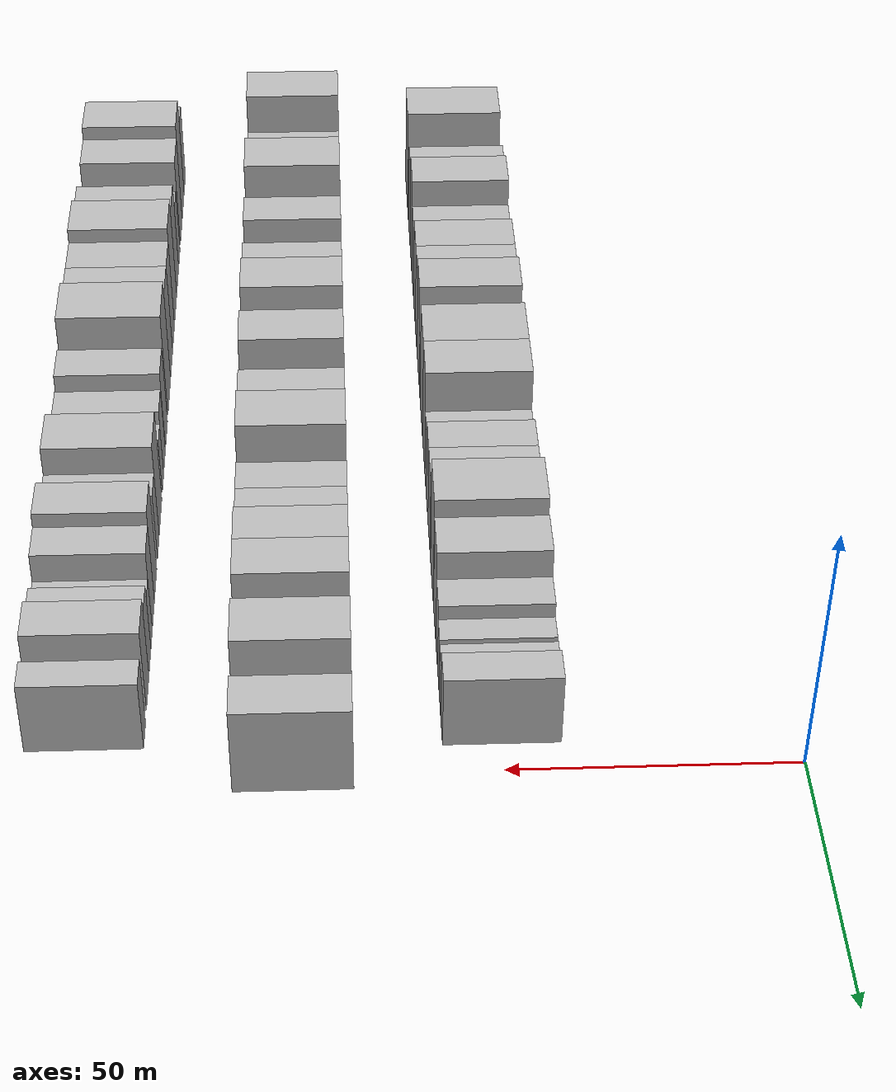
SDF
<sdf version="1.6">
 <world name="default">
  <model name="building_22">
   <static>1</static>
   <pose>50.0000 -176.1149 0 0.000000 0.000000 0.000000</pose>
   <link name="link">
    <pose>0 0 12.00 0 0 0</pose>
    <collision name="collision"><geometry><box><size>20.0000 11.1957 24.0000</size></box></geometry></collision>
    <visual name="visual">
     <cast_shadows>0</cast_shadows>
     <geometry><box><size>20.0000 11.1957 24.0000</size></box></geometry>
     <material>
      <script>
       <uri>model://HANNAS_wall/materials/scripts</uri>
       <uri>model://HANNAS_wall/materials/textures</uri>
       <name>vrc/HANNAS_wall</name>
      </script>
     </material>
    </visual>
   </link>
  </model>
  <model name="building_23">
   <static>1</static>
   <pose>50.0000 -167.2799 0 0.000000 0.000000 0.000000</pose>
   <link name="link">
    <pose>0 0 7.50 0 0 0</pose>
    <collision name="collision"><geometry><box><size>20.0000 6.4744 15.0000</size></box></geometry></collision>
    <visual name="visual">
     <cast_shadows>0</cast_shadows>
     <geometry><box><size>20.0000 6.4744 15.0000</size></box></geometry>
     <material>
      <script>
       <uri>model://HANNAS_wall/materials/scripts</uri>
       <uri>model://HANNAS_wall/materials/textures</uri>
       <name>vrc/HANNAS_wall</name>
      </script>
     </material>
    </visual>
   </link>
  </model>
  <model name="building_24">
   <static>1</static>
   <pose>50.0000 -157.5226 0 0.000000 0.000000 0.000000</pose>
   <link name="link">
    <pose>0 0 10.50 0 0 0</pose>
    <collision name="collision"><geometry><box><size>20.0000 9.0403 21.0000</size></box></geometry></collision>
    <visual name="visual">
     <cast_shadows>0</cast_shadows>
     <geometry><box><size>20.0000 9.0403 21.0000</size></box></geometry>
     <material>
      <script>
       <uri>model://HANNAS_wall/materials/scripts</uri>
       <uri>model://HANNAS_wall/materials/textures</uri>
       <name>vrc/HANNAS_wall</name>
      </script>
     </material>
    </visual>
   </link>
  </model>
  <model name="building_25">
   <static>1</static>
   <pose>50.0000 -148.1987 0 0.000000 0.000000 0.000000</pose>
   <link name="link">
    <pose>0 0 12.00 0 0 0</pose>
    <collision name="collision"><geometry><box><size>20.0000 9.6075 24.0000</size></box></geometry></collision>
    <visual name="visual">
     <cast_shadows>0</cast_shadows>
     <geometry><box><size>20.0000 9.6075 24.0000</size></box></geometry>
     <material>
      <script>
       <uri>model://HANNAS_wall/materials/scripts</uri>
       <uri>model://HANNAS_wall/materials/textures</uri>
       <name>vrc/HANNAS_wall</name>
      </script>
     </material>
    </visual>
   </link>
  </model>
  <model name="building_26">
   <static>1</static>
   <pose>50.0000 -139.4160 0 0.000000 0.000000 0.000000</pose>
   <link name="link">
    <pose>0 0 9.00 0 0 0</pose>
    <collision name="collision"><geometry><box><size>20.0000 7.9579 18.0000</size></box></geometry></collision>
    <visual name="visual">
     <cast_shadows>0</cast_shadows>
     <geometry><box><size>20.0000 7.9579 18.0000</size></box></geometry>
     <material>
      <script>
       <uri>model://HANNAS_wall/materials/scripts</uri>
       <uri>model://HANNAS_wall/materials/textures</uri>
       <name>vrc/HANNAS_wall</name>
      </script>
     </material>
    </visual>
   </link>
  </model>
  <model name="building_27">
   <static>1</static>
   <pose>50.0000 -128.8239 0 0.000000 0.000000 0.000000</pose>
   <link name="link">
    <pose>0 0 10.50 0 0 0</pose>
    <collision name="collision"><geometry><box><size>20.0000 9.2261 21.0000</size></box></geometry></collision>
    <visual name="visual">
     <cast_shadows>0</cast_shadows>
     <geometry><box><size>20.0000 9.2261 21.0000</size></box></geometry>
     <material>
      <script>
       <uri>model://HANNAS_wall/materials/scripts</uri>
       <uri>model://HANNAS_wall/materials/textures</uri>
       <name>vrc/HANNAS_wall</name>
      </script>
     </material>
    </visual>
   </link>
  </model>
  <model name="building_28">
   <static>1</static>
   <pose>50.0000 -119.6874 0 0.000000 0.000000 0.000000</pose>
   <link name="link">
    <pose>0 0 10.50 0 0 0</pose>
    <collision name="collision"><geometry><box><size>20.0000 9.0469 21.0000</size></box></geometry></collision>
    <visual name="visual">
     <cast_shadows>0</cast_shadows>
     <geometry><box><size>20.0000 9.0469 21.0000</size></box></geometry>
     <material>
      <script>
       <uri>model://HANNAS_wall/materials/scripts</uri>
       <uri>model://HANNAS_wall/materials/textures</uri>
       <name>vrc/HANNAS_wall</name>
      </script>
     </material>
    </visual>
   </link>
  </model>
  <model name="building_29">
   <static>1</static>
   <pose>50.0000 -110.2799 0 0.000000 0.000000 0.000000</pose>
   <link name="link">
    <pose>0 0 12.00 0 0 0</pose>
    <collision name="collision"><geometry><box><size>20.0000 9.7681 24.0000</size></box></geometry></collision>
    <visual name="visual">
     <cast_shadows>0</cast_shadows>
     <geometry><box><size>20.0000 9.7681 24.0000</size></box></geometry>
     <material>
      <script>
       <uri>model://HANNAS_wall/materials/scripts</uri>
       <uri>model://HANNAS_wall/materials/textures</uri>
       <name>vrc/HANNAS_wall</name>
      </script>
     </material>
    </visual>
   </link>
  </model>
  <model name="building_30">
   <static>1</static>
   <pose>50.0000 -102.4965 0 0.000000 0.000000 0.000000</pose>
   <link name="link">
    <pose>0 0 6.00 0 0 0</pose>
    <collision name="collision"><geometry><box><size>20.0000 5.7986 12.0000</size></box></geometry></collision>
    <visual name="visual">
     <cast_shadows>0</cast_shadows>
     <geometry><box><size>20.0000 5.7986 12.0000</size></box></geometry>
     <material>
      <script>
       <uri>model://HANNAS_wall/materials/scripts</uri>
       <uri>model://HANNAS_wall/materials/textures</uri>
       <name>vrc/HANNAS_wall</name>
      </script>
     </material>
    </visual>
   </link>
  </model>
  <model name="building_31">
   <static>1</static>
   <pose>50.0000 -93.7055 0 0.000000 0.000000 0.000000</pose>
   <link name="link">
    <pose>0 0 12.00 0 0 0</pose>
    <collision name="collision"><geometry><box><size>20.0000 11.7835 24.0000</size></box></geometry></collision>
    <visual name="visual">
     <cast_shadows>0</cast_shadows>
     <geometry><box><size>20.0000 11.7835 24.0000</size></box></geometry>
     <material>
      <script>
       <uri>model://HANNAS_wall/materials/scripts</uri>
       <uri>model://HANNAS_wall/materials/textures</uri>
       <name>vrc/HANNAS_wall</name>
      </script>
     </material>
    </visual>
   </link>
  </model>
  <model name="building_32">
   <static>1</static>
   <pose>50.0000 -82.7374 0 0.000000 0.000000 0.000000</pose>
   <link name="link">
    <pose>0 0 12.00 0 0 0</pose>
    <collision name="collision"><geometry><box><size>20.0000 10.1527 24.0000</size></box></geometry></collision>
    <visual name="visual">
     <cast_shadows>0</cast_shadows>
     <geometry><box><size>20.0000 10.1527 24.0000</size></box></geometry>
     <material>
      <script>
       <uri>model://HANNAS_wall/materials/scripts</uri>
       <uri>model://HANNAS_wall/materials/textures</uri>
       <name>vrc/HANNAS_wall</name>
      </script>
     </material>
    </visual>
   </link>
  </model>
  <model name="building_33">
   <static>1</static>
   <pose>50.0000 -74.2116 0 0.000000 0.000000 0.000000</pose>
   <link name="link">
    <pose>0 0 7.50 0 0 0</pose>
    <collision name="collision"><geometry><box><size>20.0000 6.8991 15.0000</size></box></geometry></collision>
    <visual name="visual">
     <cast_shadows>0</cast_shadows>
     <geometry><box><size>20.0000 6.8991 15.0000</size></box></geometry>
     <material>
      <script>
       <uri>model://HANNAS_wall/materials/scripts</uri>
       <uri>model://HANNAS_wall/materials/textures</uri>
       <name>vrc/HANNAS_wall</name>
      </script>
     </material>
    </visual>
   </link>
  </model>
  <model name="building_34">
   <static>1</static>
   <pose>50.0000 -66.9841 0 0.000000 0.000000 0.000000</pose>
   <link name="link">
    <pose>0 0 9.00 0 0 0</pose>
    <collision name="collision"><geometry><box><size>20.0000 7.5560 18.0000</size></box></geometry></collision>
    <visual name="visual">
     <cast_shadows>0</cast_shadows>
     <geometry><box><size>20.0000 7.5560 18.0000</size></box></geometry>
     <material>
      <script>
       <uri>model://HANNAS_wall/materials/scripts</uri>
       <uri>model://HANNAS_wall/materials/textures</uri>
       <name>vrc/HANNAS_wall</name>
      </script>
     </material>
    </visual>
   </link>
  </model>
  <model name="building_35">
   <static>1</static>
   <pose>50.0000 -58.8484 0 0.000000 0.000000 0.000000</pose>
   <link name="link">
    <pose>0 0 9.00 0 0 0</pose>
    <collision name="collision"><geometry><box><size>20.0000 8.7153 18.0000</size></box></geometry></collision>
    <visual name="visual">
     <cast_shadows>0</cast_shadows>
     <geometry><box><size>20.0000 8.7153 18.0000</size></box></geometry>
     <material>
      <script>
       <uri>model://HANNAS_wall/materials/scripts</uri>
       <uri>model://HANNAS_wall/materials/textures</uri>
       <name>vrc/HANNAS_wall</name>
      </script>
     </material>
    </visual>
   </link>
  </model>
  <model name="building_36">
   <static>1</static>
   <pose>50.0000 -46.8286 0 0.000000 0.000000 0.000000</pose>
   <link name="link">
    <pose>0 0 12.00 0 0 0</pose>
    <collision name="collision"><geometry><box><size>20.0000 11.3243 24.0000</size></box></geometry></collision>
    <visual name="visual">
     <cast_shadows>0</cast_shadows>
     <geometry><box><size>20.0000 11.3243 24.0000</size></box></geometry>
     <material>
      <script>
       <uri>model://HANNAS_wall/materials/scripts</uri>
       <uri>model://HANNAS_wall/materials/textures</uri>
       <name>vrc/HANNAS_wall</name>
      </script>
     </material>
    </visual>
   </link>
  </model>
  <model name="building_37">
   <static>1</static>
   <pose>50.0000 -35.5093 0 0.000000 0.000000 0.000000</pose>
   <link name="link">
    <pose>0 0 10.50 0 0 0</pose>
    <collision name="collision"><geometry><box><size>20.0000 9.3142 21.0000</size></box></geometry></collision>
    <visual name="visual">
     <cast_shadows>0</cast_shadows>
     <geometry><box><size>20.0000 9.3142 21.0000</size></box></geometry>
     <material>
      <script>
       <uri>model://HANNAS_wall/materials/scripts</uri>
       <uri>model://HANNAS_wall/materials/textures</uri>
       <name>vrc/HANNAS_wall</name>
      </script>
     </material>
    </visual>
   </link>
  </model>
  <model name="building_38">
   <static>1</static>
   <pose>50.0000 -27.4228 0 0.000000 0.000000 0.000000</pose>
   <link name="link">
    <pose>0 0 7.50 0 0 0</pose>
    <collision name="collision"><geometry><box><size>20.0000 6.8588 15.0000</size></box></geometry></collision>
    <visual name="visual">
     <cast_shadows>0</cast_shadows>
     <geometry><box><size>20.0000 6.8588 15.0000</size></box></geometry>
     <material>
      <script>
       <uri>model://HANNAS_wall/materials/scripts</uri>
       <uri>model://HANNAS_wall/materials/textures</uri>
       <name>vrc/HANNAS_wall</name>
      </script>
     </material>
    </visual>
   </link>
  </model>
  <model name="building_39">
   <static>1</static>
   <pose>50.0000 -21.4592 0 0.000000 0.000000 0.000000</pose>
   <link name="link">
    <pose>0 0 6.00 0 0 0</pose>
    <collision name="collision"><geometry><box><size>20.0000 5.0684 12.0000</size></box></geometry></collision>
    <visual name="visual">
     <cast_shadows>0</cast_shadows>
     <geometry><box><size>20.0000 5.0684 12.0000</size></box></geometry>
     <material>
      <script>
       <uri>model://HANNAS_wall/materials/scripts</uri>
       <uri>model://HANNAS_wall/materials/textures</uri>
       <name>vrc/HANNAS_wall</name>
      </script>
     </material>
    </visual>
   </link>
  </model>
  <model name="building_40">
   <static>1</static>
   <pose>50.0000 -15.3044 0 0.000000 0.000000 0.000000</pose>
   <link name="link">
    <pose>0 0 6.00 0 0 0</pose>
    <collision name="collision"><geometry><box><size>20.0000 5.2412 12.0000</size></box></geometry></collision>
    <visual name="visual">
     <cast_shadows>0</cast_shadows>
     <geometry><box><size>20.0000 5.2412 12.0000</size></box></geometry>
     <material>
      <script>
       <uri>model://HANNAS_wall/materials/scripts</uri>
       <uri>model://HANNAS_wall/materials/textures</uri>
       <name>vrc/HANNAS_wall</name>
      </script>
     </material>
    </visual>
   </link>
  </model>
  <model name="building_41">
   <static>1</static>
   <pose>50.0000 -9.3986 0 0.000000 0.000000 0.000000</pose>
   <link name="link">
    <pose>0 0 7.50 0 0 0</pose>
    <collision name="collision"><geometry><box><size>20.0000 6.5705 15.0000</size></box></geometry></collision>
    <visual name="visual">
     <cast_shadows>0</cast_shadows>
     <geometry><box><size>20.0000 6.5705 15.0000</size></box></geometry>
     <material>
      <script>
       <uri>model://HANNAS_wall/materials/scripts</uri>
       <uri>model://HANNAS_wall/materials/textures</uri>
       <name>vrc/HANNAS_wall</name>
      </script>
     </material>
    </visual>
   </link>
  </model>
  <model name="building_101">
   <static>1</static>
   <pose>85.0000 -184.4258 0 0.000000 0.000000 0.000000</pose>
   <link name="link">
    <pose>0 0 12.00 0 0 0</pose>
    <collision name="collision"><geometry><box><size>20.0000 10.7740 24.0000</size></box></geometry></collision>
    <visual name="visual">
     <cast_shadows>0</cast_shadows>
     <geometry><box><size>20.0000 10.7740 24.0000</size></box></geometry>
     <material>
      <script>
       <uri>model://HANNAS_wall/materials/scripts</uri>
       <uri>model://HANNAS_wall/materials/textures</uri>
       <name>vrc/HANNAS_wall</name>
      </script>
     </material>
    </visual>
   </link>
  </model>
  <model name="building_102">
   <static>1</static>
   <pose>85.0000 -175.5268 0 0.000000 0.000000 0.000000</pose>
   <link name="link">
    <pose>0 0 7.50 0 0 0</pose>
    <collision name="collision"><geometry><box><size>20.0000 7.0239 15.0000</size></box></geometry></collision>
    <visual name="visual">
     <cast_shadows>0</cast_shadows>
     <geometry><box><size>20.0000 7.0239 15.0000</size></box></geometry>
     <material>
      <script>
       <uri>model://HANNAS_wall/materials/scripts</uri>
       <uri>model://HANNAS_wall/materials/textures</uri>
       <name>vrc/HANNAS_wall</name>
      </script>
     </material>
    </visual>
   </link>
  </model>
  <model name="building_103">
   <static>1</static>
   <pose>85.0000 -165.9142 0 0.000000 0.000000 0.000000</pose>
   <link name="link">
    <pose>0 0 9.00 0 0 0</pose>
    <collision name="collision"><geometry><box><size>20.0000 8.2014 18.0000</size></box></geometry></collision>
    <visual name="visual">
     <cast_shadows>0</cast_shadows>
     <geometry><box><size>20.0000 8.2014 18.0000</size></box></geometry>
     <material>
      <script>
       <uri>model://HANNAS_wall/materials/scripts</uri>
       <uri>model://HANNAS_wall/materials/textures</uri>
       <name>vrc/HANNAS_wall</name>
      </script>
     </material>
    </visual>
   </link>
  </model>
  <model name="building_104">
   <static>1</static>
   <pose>85.0000 -156.1710 0 0.000000 0.000000 0.000000</pose>
   <link name="link">
    <pose>0 0 12.00 0 0 0</pose>
    <collision name="collision"><geometry><box><size>20.0000 11.2849 24.0000</size></box></geometry></collision>
    <visual name="visual">
     <cast_shadows>0</cast_shadows>
     <geometry><box><size>20.0000 11.2849 24.0000</size></box></geometry>
     <material>
      <script>
       <uri>model://HANNAS_wall/materials/scripts</uri>
       <uri>model://HANNAS_wall/materials/textures</uri>
       <name>vrc/HANNAS_wall</name>
      </script>
     </material>
    </visual>
   </link>
  </model>
  <model name="building_105">
   <static>1</static>
   <pose>85.0000 -146.4086 0 0.000000 0.000000 0.000000</pose>
   <link name="link">
    <pose>0 0 7.50 0 0 0</pose>
    <collision name="collision"><geometry><box><size>20.0000 6.2400 15.0000</size></box></geometry></collision>
    <visual name="visual">
     <cast_shadows>0</cast_shadows>
     <geometry><box><size>20.0000 6.2400 15.0000</size></box></geometry>
     <material>
      <script>
       <uri>model://HANNAS_wall/materials/scripts</uri>
       <uri>model://HANNAS_wall/materials/textures</uri>
       <name>vrc/HANNAS_wall</name>
      </script>
     </material>
    </visual>
   </link>
  </model>
  <model name="building_106">
   <static>1</static>
   <pose>85.0000 -139.0010 0 0.000000 0.000000 0.000000</pose>
   <link name="link">
    <pose>0 0 10.50 0 0 0</pose>
    <collision name="collision"><geometry><box><size>20.0000 8.5751 21.0000</size></box></geometry></collision>
    <visual name="visual">
     <cast_shadows>0</cast_shadows>
     <geometry><box><size>20.0000 8.5751 21.0000</size></box></geometry>
     <material>
      <script>
       <uri>model://HANNAS_wall/materials/scripts</uri>
       <uri>model://HANNAS_wall/materials/textures</uri>
       <name>vrc/HANNAS_wall</name>
      </script>
     </material>
    </visual>
   </link>
  </model>
  <model name="building_107">
   <static>1</static>
   <pose>85.0000 -132.0676 0 0.000000 0.000000 0.000000</pose>
   <link name="link">
    <pose>0 0 6.00 0 0 0</pose>
    <collision name="collision"><geometry><box><size>20.0000 5.2917 12.0000</size></box></geometry></collision>
    <visual name="visual">
     <cast_shadows>0</cast_shadows>
     <geometry><box><size>20.0000 5.2917 12.0000</size></box></geometry>
     <material>
      <script>
       <uri>model://HANNAS_wall/materials/scripts</uri>
       <uri>model://HANNAS_wall/materials/textures</uri>
       <name>vrc/HANNAS_wall</name>
      </script>
     </material>
    </visual>
   </link>
  </model>
  <model name="building_108">
   <static>1</static>
   <pose>85.0000 -121.5155 0 0.000000 0.000000 0.000000</pose>
   <link name="link">
    <pose>0 0 10.50 0 0 0</pose>
    <collision name="collision"><geometry><box><size>20.0000 9.8126 21.0000</size></box></geometry></collision>
    <visual name="visual">
     <cast_shadows>0</cast_shadows>
     <geometry><box><size>20.0000 9.8126 21.0000</size></box></geometry>
     <material>
      <script>
       <uri>model://HANNAS_wall/materials/scripts</uri>
       <uri>model://HANNAS_wall/materials/textures</uri>
       <name>vrc/HANNAS_wall</name>
      </script>
     </material>
    </visual>
   </link>
  </model>
  <model name="building_109">
   <static>1</static>
   <pose>85.0000 -111.5346 0 0.000000 0.000000 0.000000</pose>
   <link name="link">
    <pose>0 0 12.00 0 0 0</pose>
    <collision name="collision"><geometry><box><size>20.0000 10.1492 24.0000</size></box></geometry></collision>
    <visual name="visual">
     <cast_shadows>0</cast_shadows>
     <geometry><box><size>20.0000 10.1492 24.0000</size></box></geometry>
     <material>
      <script>
       <uri>model://HANNAS_wall/materials/scripts</uri>
       <uri>model://HANNAS_wall/materials/textures</uri>
       <name>vrc/HANNAS_wall</name>
      </script>
     </material>
    </visual>
   </link>
  </model>
  <model name="building_110">
   <static>1</static>
   <pose>85.0000 -101.6592 0 0.000000 0.000000 0.000000</pose>
   <link name="link">
    <pose>0 0 6.00 0 0 0</pose>
    <collision name="collision"><geometry><box><size>20.0000 5.6017 12.0000</size></box></geometry></collision>
    <visual name="visual">
     <cast_shadows>0</cast_shadows>
     <geometry><box><size>20.0000 5.6017 12.0000</size></box></geometry>
     <material>
      <script>
       <uri>model://HANNAS_wall/materials/scripts</uri>
       <uri>model://HANNAS_wall/materials/textures</uri>
       <name>vrc/HANNAS_wall</name>
      </script>
     </material>
    </visual>
   </link>
  </model>
  <model name="building_111">
   <static>1</static>
   <pose>85.0000 -94.0361 0 0.000000 0.000000 0.000000</pose>
   <link name="link">
    <pose>0 0 12.00 0 0 0</pose>
    <collision name="collision"><geometry><box><size>20.0000 9.6445 24.0000</size></box></geometry></collision>
    <visual name="visual">
     <cast_shadows>0</cast_shadows>
     <geometry><box><size>20.0000 9.6445 24.0000</size></box></geometry>
     <material>
      <script>
       <uri>model://HANNAS_wall/materials/scripts</uri>
       <uri>model://HANNAS_wall/materials/textures</uri>
       <name>vrc/HANNAS_wall</name>
      </script>
     </material>
    </visual>
   </link>
  </model>
  <model name="building_112">
   <static>1</static>
   <pose>85.0000 -86.5888 0 0.000000 0.000000 0.000000</pose>
   <link name="link">
    <pose>0 0 6.00 0 0 0</pose>
    <collision name="collision"><geometry><box><size>20.0000 5.2501 12.0000</size></box></geometry></collision>
    <visual name="visual">
     <cast_shadows>0</cast_shadows>
     <geometry><box><size>20.0000 5.2501 12.0000</size></box></geometry>
     <material>
      <script>
       <uri>model://HANNAS_wall/materials/scripts</uri>
       <uri>model://HANNAS_wall/materials/textures</uri>
       <name>vrc/HANNAS_wall</name>
      </script>
     </material>
    </visual>
   </link>
  </model>
  <model name="building_113">
   <static>1</static>
   <pose>85.0000 -78.7275 0 0.000000 0.000000 0.000000</pose>
   <link name="link">
    <pose>0 0 10.50 0 0 0</pose>
    <collision name="collision"><geometry><box><size>20.0000 10.4726 21.0000</size></box></geometry></collision>
    <visual name="visual">
     <cast_shadows>0</cast_shadows>
     <geometry><box><size>20.0000 10.4726 21.0000</size></box></geometry>
     <material>
      <script>
       <uri>model://HANNAS_wall/materials/scripts</uri>
       <uri>model://HANNAS_wall/materials/textures</uri>
       <name>vrc/HANNAS_wall</name>
      </script>
     </material>
    </visual>
   </link>
  </model>
  <model name="building_114">
   <static>1</static>
   <pose>85.0000 -68.2779 0 0.000000 0.000000 0.000000</pose>
   <link name="link">
    <pose>0 0 12.00 0 0 0</pose>
    <collision name="collision"><geometry><box><size>20.0000 10.4266 24.0000</size></box></geometry></collision>
    <visual name="visual">
     <cast_shadows>0</cast_shadows>
     <geometry><box><size>20.0000 10.4266 24.0000</size></box></geometry>
     <material>
      <script>
       <uri>model://HANNAS_wall/materials/scripts</uri>
       <uri>model://HANNAS_wall/materials/textures</uri>
       <name>vrc/HANNAS_wall</name>
      </script>
     </material>
    </visual>
   </link>
  </model>
  <model name="building_115">
   <static>1</static>
   <pose>85.0000 -56.4358 0 0.000000 0.000000 0.000000</pose>
   <link name="link">
    <pose>0 0 9.00 0 0 0</pose>
    <collision name="collision"><geometry><box><size>20.0000 7.2576 18.0000</size></box></geometry></collision>
    <visual name="visual">
     <cast_shadows>0</cast_shadows>
     <geometry><box><size>20.0000 7.2576 18.0000</size></box></geometry>
     <material>
      <script>
       <uri>model://HANNAS_wall/materials/scripts</uri>
       <uri>model://HANNAS_wall/materials/textures</uri>
       <name>vrc/HANNAS_wall</name>
      </script>
     </material>
    </visual>
   </link>
  </model>
  <model name="building_116">
   <static>1</static>
   <pose>85.0000 -48.5118 0 0.000000 0.000000 0.000000</pose>
   <link name="link">
    <pose>0 0 9.00 0 0 0</pose>
    <collision name="collision"><geometry><box><size>20.0000 8.5904 18.0000</size></box></geometry></collision>
    <visual name="visual">
     <cast_shadows>0</cast_shadows>
     <geometry><box><size>20.0000 8.5904 18.0000</size></box></geometry>
     <material>
      <script>
       <uri>model://HANNAS_wall/materials/scripts</uri>
       <uri>model://HANNAS_wall/materials/textures</uri>
       <name>vrc/HANNAS_wall</name>
      </script>
     </material>
    </visual>
   </link>
  </model>
  <model name="building_117">
   <static>1</static>
   <pose>85.0000 -40.0064 0 0.000000 0.000000 0.000000</pose>
   <link name="link">
    <pose>0 0 10.50 0 0 0</pose>
    <collision name="collision"><geometry><box><size>20.0000 8.4204 21.0000</size></box></geometry></collision>
    <visual name="visual">
     <cast_shadows>0</cast_shadows>
     <geometry><box><size>20.0000 8.4204 21.0000</size></box></geometry>
     <material>
      <script>
       <uri>model://HANNAS_wall/materials/scripts</uri>
       <uri>model://HANNAS_wall/materials/textures</uri>
       <name>vrc/HANNAS_wall</name>
      </script>
     </material>
    </visual>
   </link>
  </model>
  <model name="building_118">
   <static>1</static>
   <pose>85.0000 -31.2434 0 0.000000 0.000000 0.000000</pose>
   <link name="link">
    <pose>0 0 10.50 0 0 0</pose>
    <collision name="collision"><geometry><box><size>20.0000 9.1055 21.0000</size></box></geometry></collision>
    <visual name="visual">
     <cast_shadows>0</cast_shadows>
     <geometry><box><size>20.0000 9.1055 21.0000</size></box></geometry>
     <material>
      <script>
       <uri>model://HANNAS_wall/materials/scripts</uri>
       <uri>model://HANNAS_wall/materials/textures</uri>
       <name>vrc/HANNAS_wall</name>
      </script>
     </material>
    </visual>
   </link>
  </model>
  <model name="building_119">
   <static>1</static>
   <pose>85.0000 -23.7132 0 0.000000 0.000000 0.000000</pose>
   <link name="link">
    <pose>0 0 6.00 0 0 0</pose>
    <collision name="collision"><geometry><box><size>20.0000 5.9549 12.0000</size></box></geometry></collision>
    <visual name="visual">
     <cast_shadows>0</cast_shadows>
     <geometry><box><size>20.0000 5.9549 12.0000</size></box></geometry>
     <material>
      <script>
       <uri>model://HANNAS_wall/materials/scripts</uri>
       <uri>model://HANNAS_wall/materials/textures</uri>
       <name>vrc/HANNAS_wall</name>
      </script>
     </material>
    </visual>
   </link>
  </model>
  <model name="building_120">
   <static>1</static>
   <pose>85.0000 -15.5753 0 0.000000 0.000000 0.000000</pose>
   <link name="link">
    <pose>0 0 10.50 0 0 0</pose>
    <collision name="collision"><geometry><box><size>20.0000 10.3208 21.0000</size></box></geometry></collision>
    <visual name="visual">
     <cast_shadows>0</cast_shadows>
     <geometry><box><size>20.0000 10.3208 21.0000</size></box></geometry>
     <material>
      <script>
       <uri>model://HANNAS_wall/materials/scripts</uri>
       <uri>model://HANNAS_wall/materials/textures</uri>
       <name>vrc/HANNAS_wall</name>
      </script>
     </material>
    </visual>
   </link>
  </model>
  <model name="building_121">
   <static>1</static>
   <pose>85.0000 -7.9220 0 0.000000 0.000000 0.000000</pose>
   <link name="link">
    <pose>0 0 6.00 0 0 0</pose>
    <collision name="collision"><geometry><box><size>20.0000 4.9858 12.0000</size></box></geometry></collision>
    <visual name="visual">
     <cast_shadows>0</cast_shadows>
     <geometry><box><size>20.0000 4.9858 12.0000</size></box></geometry>
     <material>
      <script>
       <uri>model://HANNAS_wall/materials/scripts</uri>
       <uri>model://HANNAS_wall/materials/textures</uri>
       <name>vrc/HANNAS_wall</name>
      </script>
     </material>
    </visual>
   </link>
  </model>
  <model name="building_122">
   <static>1</static>
   <pose>85.0000 -1.0642 0 0.000000 0.000000 0.000000</pose>
   <link name="link">
    <pose>0 0 9.00 0 0 0</pose>
    <collision name="collision"><geometry><box><size>20.0000 8.7297 18.0000</size></box></geometry></collision>
    <visual name="visual">
     <cast_shadows>0</cast_shadows>
     <geometry><box><size>20.0000 8.7297 18.0000</size></box></geometry>
     <material>
      <script>
       <uri>model://HANNAS_wall/materials/scripts</uri>
       <uri>model://HANNAS_wall/materials/textures</uri>
       <name>vrc/HANNAS_wall</name>
      </script>
     </material>
    </visual>
   </link>
  </model>
  <model name="building_184">
   <static>1</static>
   <pose>120.0000 -181.7621 0 0.000000 0.000000 0.000000</pose>
   <link name="link">
    <pose>0 0 9.00 0 0 0</pose>
    <collision name="collision"><geometry><box><size>20.0000 7.5617 18.0000</size></box></geometry></collision>
    <visual name="visual">
     <cast_shadows>0</cast_shadows>
     <geometry><box><size>20.0000 7.5617 18.0000</size></box></geometry>
     <material>
      <script>
       <uri>model://HANNAS_wall/materials/scripts</uri>
       <uri>model://HANNAS_wall/materials/textures</uri>
       <name>vrc/HANNAS_wall</name>
      </script>
     </material>
    </visual>
   </link>
  </model>
  <model name="building_185">
   <static>1</static>
   <pose>120.0000 -172.6205 0 0.000000 0.000000 0.000000</pose>
   <link name="link">
    <pose>0 0 12.00 0 0 0</pose>
    <collision name="collision"><geometry><box><size>20.0000 10.7216 24.0000</size></box></geometry></collision>
    <visual name="visual">
     <cast_shadows>0</cast_shadows>
     <geometry><box><size>20.0000 10.7216 24.0000</size></box></geometry>
     <material>
      <script>
       <uri>model://HANNAS_wall/materials/scripts</uri>
       <uri>model://HANNAS_wall/materials/textures</uri>
       <name>vrc/HANNAS_wall</name>
      </script>
     </material>
    </visual>
   </link>
  </model>
  <model name="building_186">
   <static>1</static>
   <pose>120.0000 -162.3748 0 0.000000 0.000000 0.000000</pose>
   <link name="link">
    <pose>0 0 10.50 0 0 0</pose>
    <collision name="collision"><geometry><box><size>20.0000 9.7698 21.0000</size></box></geometry></collision>
    <visual name="visual">
     <cast_shadows>0</cast_shadows>
     <geometry><box><size>20.0000 9.7698 21.0000</size></box></geometry>
     <material>
      <script>
       <uri>model://HANNAS_wall/materials/scripts</uri>
       <uri>model://HANNAS_wall/materials/textures</uri>
       <name>vrc/HANNAS_wall</name>
      </script>
     </material>
    </visual>
   </link>
  </model>
  <model name="building_187">
   <static>1</static>
   <pose>120.0000 -152.0386 0 0.000000 0.000000 0.000000</pose>
   <link name="link">
    <pose>0 0 7.50 0 0 0</pose>
    <collision name="collision"><geometry><box><size>20.0000 6.9025 15.0000</size></box></geometry></collision>
    <visual name="visual">
     <cast_shadows>0</cast_shadows>
     <geometry><box><size>20.0000 6.9025 15.0000</size></box></geometry>
     <material>
      <script>
       <uri>model://HANNAS_wall/materials/scripts</uri>
       <uri>model://HANNAS_wall/materials/textures</uri>
       <name>vrc/HANNAS_wall</name>
      </script>
     </material>
    </visual>
   </link>
  </model>
  <model name="building_188">
   <static>1</static>
   <pose>120.0000 -143.5290 0 0.000000 0.000000 0.000000</pose>
   <link name="link">
    <pose>0 0 10.50 0 0 0</pose>
    <collision name="collision"><geometry><box><size>20.0000 10.1166 21.0000</size></box></geometry></collision>
    <visual name="visual">
     <cast_shadows>0</cast_shadows>
     <geometry><box><size>20.0000 10.1166 21.0000</size></box></geometry>
     <material>
      <script>
       <uri>model://HANNAS_wall/materials/scripts</uri>
       <uri>model://HANNAS_wall/materials/textures</uri>
       <name>vrc/HANNAS_wall</name>
      </script>
     </material>
    </visual>
   </link>
  </model>
  <model name="building_189">
   <static>1</static>
   <pose>120.0000 -133.0462 0 0.000000 0.000000 0.000000</pose>
   <link name="link">
    <pose>0 0 12.00 0 0 0</pose>
    <collision name="collision"><geometry><box><size>20.0000 10.8490 24.0000</size></box></geometry></collision>
    <visual name="visual">
     <cast_shadows>0</cast_shadows>
     <geometry><box><size>20.0000 10.8490 24.0000</size></box></geometry>
     <material>
      <script>
       <uri>model://HANNAS_wall/materials/scripts</uri>
       <uri>model://HANNAS_wall/materials/textures</uri>
       <name>vrc/HANNAS_wall</name>
      </script>
     </material>
    </visual>
   </link>
  </model>
  <model name="building_190">
   <static>1</static>
   <pose>120.0000 -123.1478 0 0.000000 0.000000 0.000000</pose>
   <link name="link">
    <pose>0 0 10.50 0 0 0</pose>
    <collision name="collision"><geometry><box><size>20.0000 8.9477 21.0000</size></box></geometry></collision>
    <visual name="visual">
     <cast_shadows>0</cast_shadows>
     <geometry><box><size>20.0000 8.9477 21.0000</size></box></geometry>
     <material>
      <script>
       <uri>model://HANNAS_wall/materials/scripts</uri>
       <uri>model://HANNAS_wall/materials/textures</uri>
       <name>vrc/HANNAS_wall</name>
      </script>
     </material>
    </visual>
   </link>
  </model>
  <model name="building_191">
   <static>1</static>
   <pose>120.0000 -113.8995 0 0.000000 0.000000 0.000000</pose>
   <link name="link">
    <pose>0 0 10.50 0 0 0</pose>
    <collision name="collision"><geometry><box><size>20.0000 9.5490 21.0000</size></box></geometry></collision>
    <visual name="visual">
     <cast_shadows>0</cast_shadows>
     <geometry><box><size>20.0000 9.5490 21.0000</size></box></geometry>
     <material>
      <script>
       <uri>model://HANNAS_wall/materials/scripts</uri>
       <uri>model://HANNAS_wall/materials/textures</uri>
       <name>vrc/HANNAS_wall</name>
      </script>
     </material>
    </visual>
   </link>
  </model>
  <model name="building_192">
   <static>1</static>
   <pose>120.0000 -103.2086 0 0.000000 0.000000 0.000000</pose>
   <link name="link">
    <pose>0 0 12.00 0 0 0</pose>
    <collision name="collision"><geometry><box><size>20.0000 11.8328 24.0000</size></box></geometry></collision>
    <visual name="visual">
     <cast_shadows>0</cast_shadows>
     <geometry><box><size>20.0000 11.8328 24.0000</size></box></geometry>
     <material>
      <script>
       <uri>model://HANNAS_wall/materials/scripts</uri>
       <uri>model://HANNAS_wall/materials/textures</uri>
       <name>vrc/HANNAS_wall</name>
      </script>
     </material>
    </visual>
   </link>
  </model>
  <model name="building_193">
   <static>1</static>
   <pose>120.0000 -91.1529 0 0.000000 0.000000 0.000000</pose>
   <link name="link">
    <pose>0 0 9.00 0 0 0</pose>
    <collision name="collision"><geometry><box><size>20.0000 8.2787 18.0000</size></box></geometry></collision>
    <visual name="visual">
     <cast_shadows>0</cast_shadows>
     <geometry><box><size>20.0000 8.2787 18.0000</size></box></geometry>
     <material>
      <script>
       <uri>model://HANNAS_wall/materials/scripts</uri>
       <uri>model://HANNAS_wall/materials/textures</uri>
       <name>vrc/HANNAS_wall</name>
      </script>
     </material>
    </visual>
   </link>
  </model>
  <model name="building_194">
   <static>1</static>
   <pose>120.0000 -82.6152 0 0.000000 0.000000 0.000000</pose>
   <link name="link">
    <pose>0 0 7.50 0 0 0</pose>
    <collision name="collision"><geometry><box><size>20.0000 6.7968 15.0000</size></box></geometry></collision>
    <visual name="visual">
     <cast_shadows>0</cast_shadows>
     <geometry><box><size>20.0000 6.7968 15.0000</size></box></geometry>
     <material>
      <script>
       <uri>model://HANNAS_wall/materials/scripts</uri>
       <uri>model://HANNAS_wall/materials/textures</uri>
       <name>vrc/HANNAS_wall</name>
      </script>
     </material>
    </visual>
   </link>
  </model>
  <model name="building_195">
   <static>1</static>
   <pose>120.0000 -76.3747 0 0.000000 0.000000 0.000000</pose>
   <link name="link">
    <pose>0 0 6.00 0 0 0</pose>
    <collision name="collision"><geometry><box><size>20.0000 5.6841 12.0000</size></box></geometry></collision>
    <visual name="visual">
     <cast_shadows>0</cast_shadows>
     <geometry><box><size>20.0000 5.6841 12.0000</size></box></geometry>
     <material>
      <script>
       <uri>model://HANNAS_wall/materials/scripts</uri>
       <uri>model://HANNAS_wall/materials/textures</uri>
       <name>vrc/HANNAS_wall</name>
      </script>
     </material>
    </visual>
   </link>
  </model>
  <model name="building_196">
   <static>1</static>
   <pose>120.0000 -66.4212 0 0.000000 0.000000 0.000000</pose>
   <link name="link">
    <pose>0 0 10.50 0 0 0</pose>
    <collision name="collision"><geometry><box><size>20.0000 10.2230 21.0000</size></box></geometry></collision>
    <visual name="visual">
     <cast_shadows>0</cast_shadows>
     <geometry><box><size>20.0000 10.2230 21.0000</size></box></geometry>
     <material>
      <script>
       <uri>model://HANNAS_wall/materials/scripts</uri>
       <uri>model://HANNAS_wall/materials/textures</uri>
       <name>vrc/HANNAS_wall</name>
      </script>
     </material>
    </visual>
   </link>
  </model>
  <model name="building_197">
   <static>1</static>
   <pose>120.0000 -58.0589 0 0.000000 0.000000 0.000000</pose>
   <link name="link">
    <pose>0 0 7.50 0 0 0</pose>
    <collision name="collision"><geometry><box><size>20.0000 6.5016 15.0000</size></box></geometry></collision>
    <visual name="visual">
     <cast_shadows>0</cast_shadows>
     <geometry><box><size>20.0000 6.5016 15.0000</size></box></geometry>
     <material>
      <script>
       <uri>model://HANNAS_wall/materials/scripts</uri>
       <uri>model://HANNAS_wall/materials/textures</uri>
       <name>vrc/HANNAS_wall</name>
      </script>
     </material>
    </visual>
   </link>
  </model>
  <model name="building_198">
   <static>1</static>
   <pose>120.0000 -47.5576 0 0.000000 0.000000 0.000000</pose>
   <link name="link">
    <pose>0 0 10.50 0 0 0</pose>
    <collision name="collision"><geometry><box><size>20.0000 8.5010 21.0000</size></box></geometry></collision>
    <visual name="visual">
     <cast_shadows>0</cast_shadows>
     <geometry><box><size>20.0000 8.5010 21.0000</size></box></geometry>
     <material>
      <script>
       <uri>model://HANNAS_wall/materials/scripts</uri>
       <uri>model://HANNAS_wall/materials/textures</uri>
       <name>vrc/HANNAS_wall</name>
      </script>
     </material>
    </visual>
   </link>
  </model>
  <model name="building_199">
   <static>1</static>
   <pose>120.0000 -39.5896 0 0.000000 0.000000 0.000000</pose>
   <link name="link">
    <pose>0 0 9.00 0 0 0</pose>
    <collision name="collision"><geometry><box><size>20.0000 7.4352 18.0000</size></box></geometry></collision>
    <visual name="visual">
     <cast_shadows>0</cast_shadows>
     <geometry><box><size>20.0000 7.4352 18.0000</size></box></geometry>
     <material>
      <script>
       <uri>model://HANNAS_wall/materials/scripts</uri>
       <uri>model://HANNAS_wall/materials/textures</uri>
       <name>vrc/HANNAS_wall</name>
      </script>
     </material>
    </visual>
   </link>
  </model>
  <model name="building_200">
   <static>1</static>
   <pose>120.0000 -33.4152 0 0.000000 0.000000 0.000000</pose>
   <link name="link">
    <pose>0 0 6.00 0 0 0</pose>
    <collision name="collision"><geometry><box><size>20.0000 4.9136 12.0000</size></box></geometry></collision>
    <visual name="visual">
     <cast_shadows>0</cast_shadows>
     <geometry><box><size>20.0000 4.9136 12.0000</size></box></geometry>
     <material>
      <script>
       <uri>model://HANNAS_wall/materials/scripts</uri>
       <uri>model://HANNAS_wall/materials/textures</uri>
       <name>vrc/HANNAS_wall</name>
      </script>
     </material>
    </visual>
   </link>
  </model>
  <model name="building_201">
   <static>1</static>
   <pose>120.0000 -27.5976 0 0.000000 0.000000 0.000000</pose>
   <link name="link">
    <pose>0 0 7.50 0 0 0</pose>
    <collision name="collision"><geometry><box><size>20.0000 6.7215 15.0000</size></box></geometry></collision>
    <visual name="visual">
     <cast_shadows>0</cast_shadows>
     <geometry><box><size>20.0000 6.7215 15.0000</size></box></geometry>
     <material>
      <script>
       <uri>model://HANNAS_wall/materials/scripts</uri>
       <uri>model://HANNAS_wall/materials/textures</uri>
       <name>vrc/HANNAS_wall</name>
      </script>
     </material>
    </visual>
   </link>
  </model>
  <model name="building_202">
   <static>1</static>
   <pose>120.0000 -20.0796 0 0.000000 0.000000 0.000000</pose>
   <link name="link">
    <pose>0 0 9.00 0 0 0</pose>
    <collision name="collision"><geometry><box><size>20.0000 8.3146 18.0000</size></box></geometry></collision>
    <visual name="visual">
     <cast_shadows>0</cast_shadows>
     <geometry><box><size>20.0000 8.3146 18.0000</size></box></geometry>
     <material>
      <script>
       <uri>model://HANNAS_wall/materials/scripts</uri>
       <uri>model://HANNAS_wall/materials/textures</uri>
       <name>vrc/HANNAS_wall</name>
      </script>
     </material>
    </visual>
   </link>
  </model>
  <model name="building_203">
   <static>1</static>
   <pose>120.0000 -9.9190 0 0.000000 0.000000 0.000000</pose>
   <link name="link">
    <pose>0 0 7.50 0 0 0</pose>
    <collision name="collision"><geometry><box><size>20.0000 6.0065 15.0000</size></box></geometry></collision>
    <visual name="visual">
     <cast_shadows>0</cast_shadows>
     <geometry><box><size>20.0000 6.0065 15.0000</size></box></geometry>
     <material>
      <script>
       <uri>model://HANNAS_wall/materials/scripts</uri>
       <uri>model://HANNAS_wall/materials/textures</uri>
       <name>vrc/HANNAS_wall</name>
      </script>
     </material>
    </visual>
   </link>
  </model>
 </world>
</sdf>
